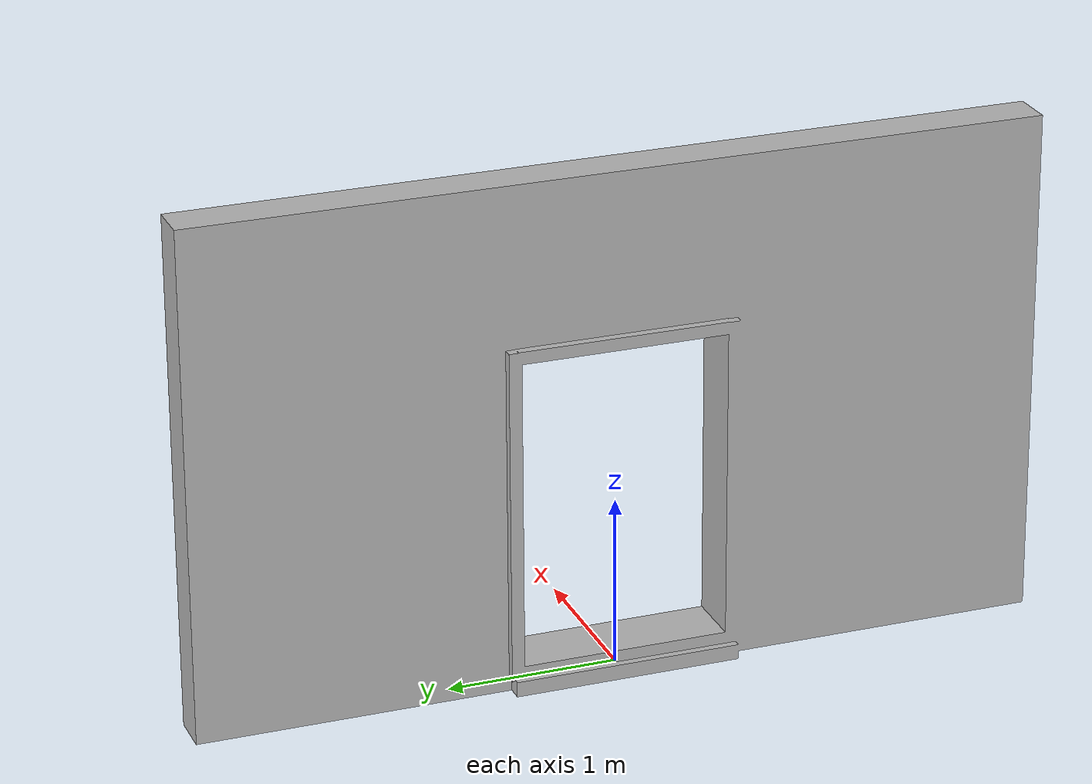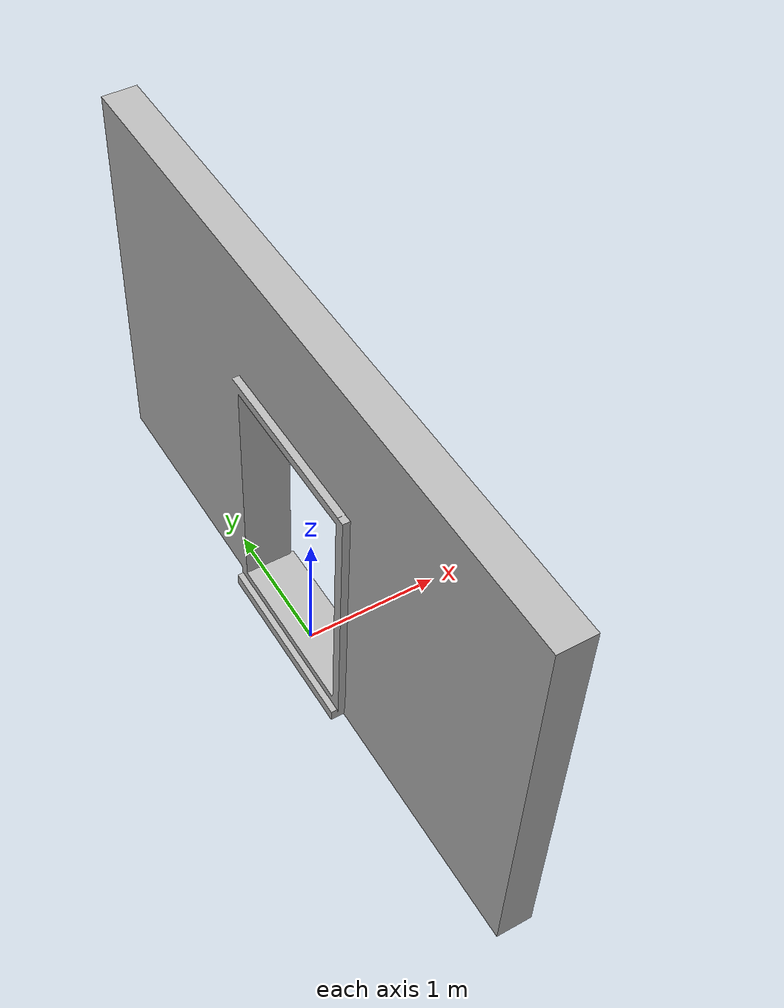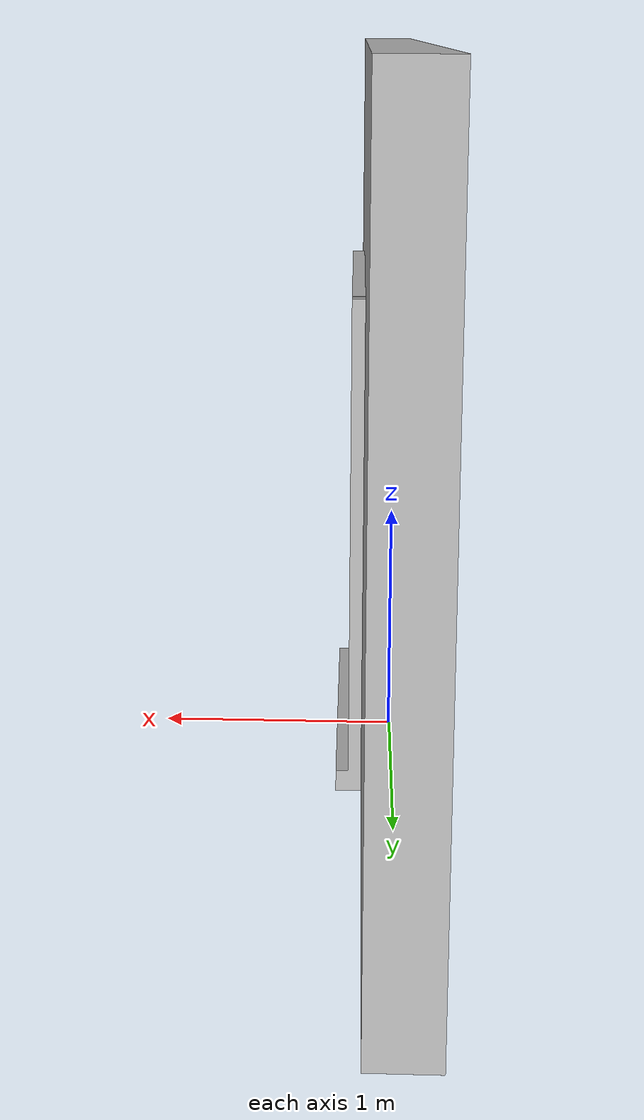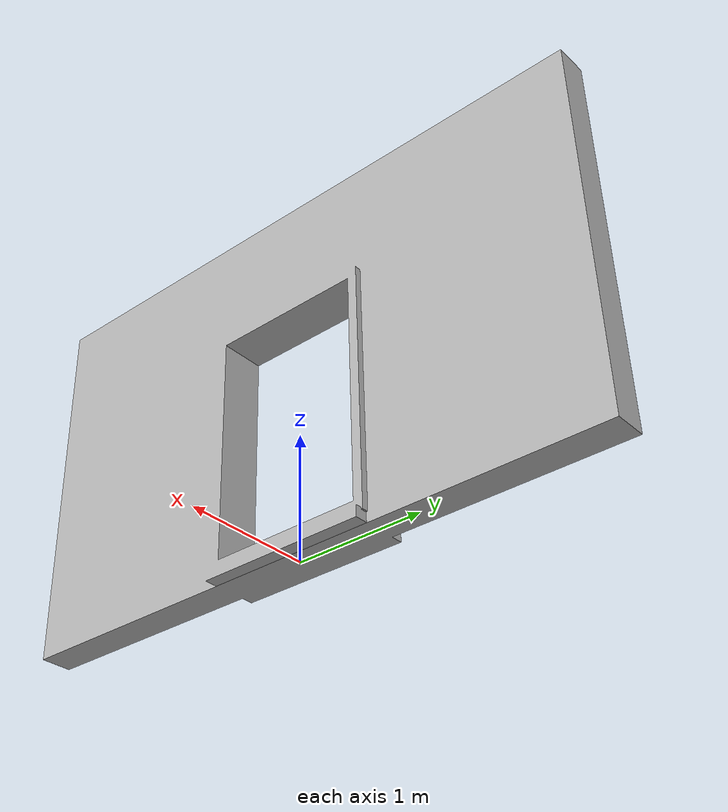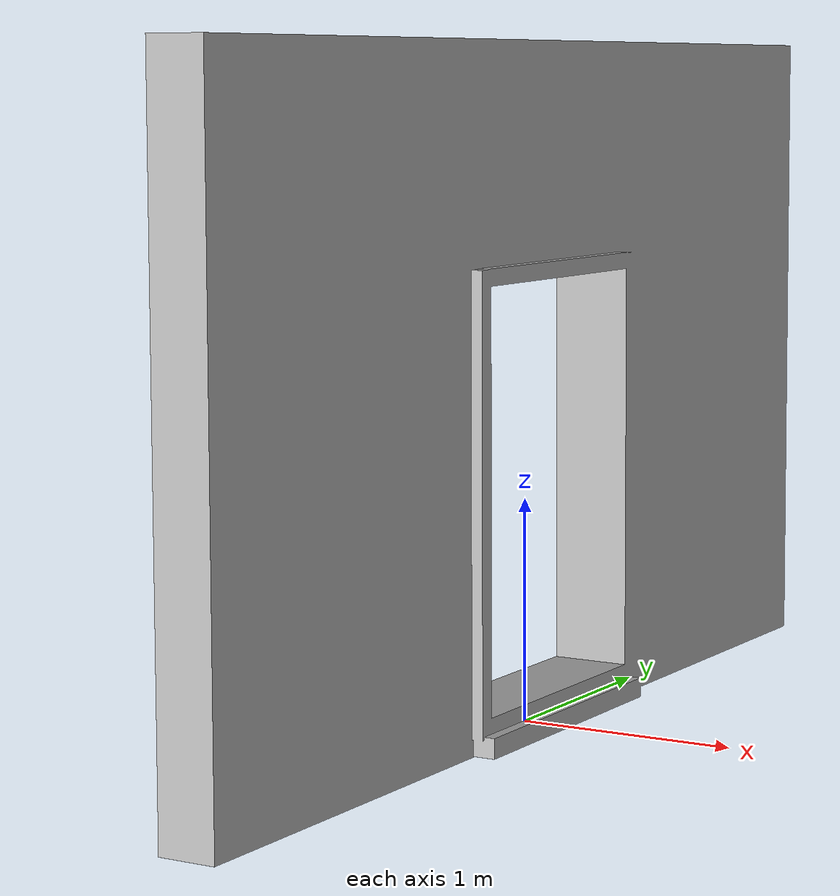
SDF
<sdf version="1.5">
  <model name="wall_with_center_door_internal">
    <link name="wall_with_center_door_internal">
      <visual name="visual">
        <pose>0 0 0 0 0 -1.57</pose>
        <geometry>
          <mesh>
            <uri>package://underactuated/models/uav_environment/wall_with_center_door_internal.obj</uri>
          </mesh>
        </geometry>
      </visual>
      <collision name="collision_Wall.020">
        <pose>0.0 -1.5569394826889038 1.5 0.0 0.0 0.0</pose>
        <geometry>
          <box>
            <size>0.25 1.8581310510635376 3.0</size>
          </box>
        </geometry>
      </collision>
      <collision name="collision_Wall.023">
        <pose>0.0 1.5570484399795532 1.5 0.0 0.0 0.0</pose>
        <geometry>
          <box>
            <size>0.25 1.8626335859298706 3.0</size>
          </box>
        </geometry>
      </collision>
      <collision name="collision_Wall.024">
        <pose>0.0 0.0 2.5 0.0 0.0 0.0</pose>
        <geometry>
          <box>
            <size>0.25 1.25 1.0</size>
          </box>
        </geometry>
      </collision>
    </link>
    <frame name="frame_InDoor.001">
      <pose>0.0 0.0 1.0 0.0 0.0 0.0</pose>
    </frame>
  </model>
</sdf>
